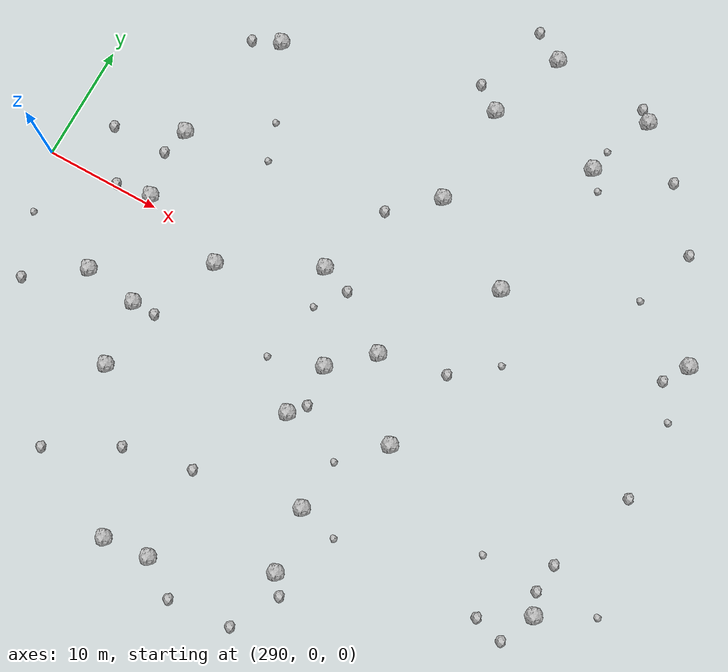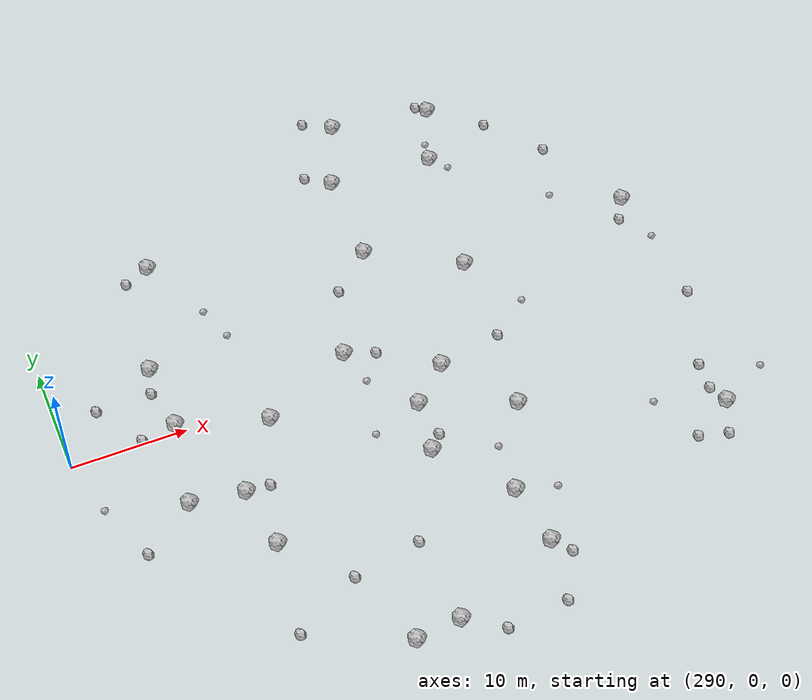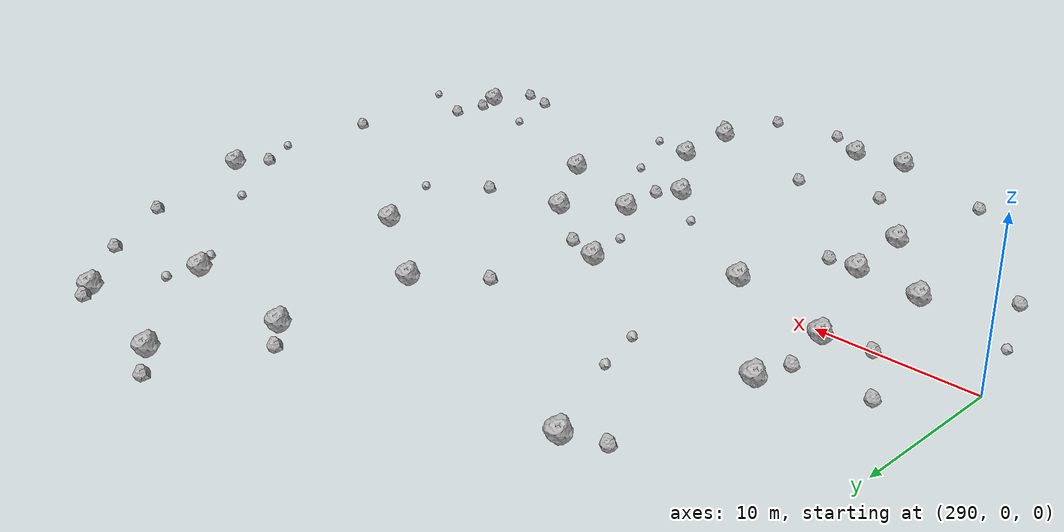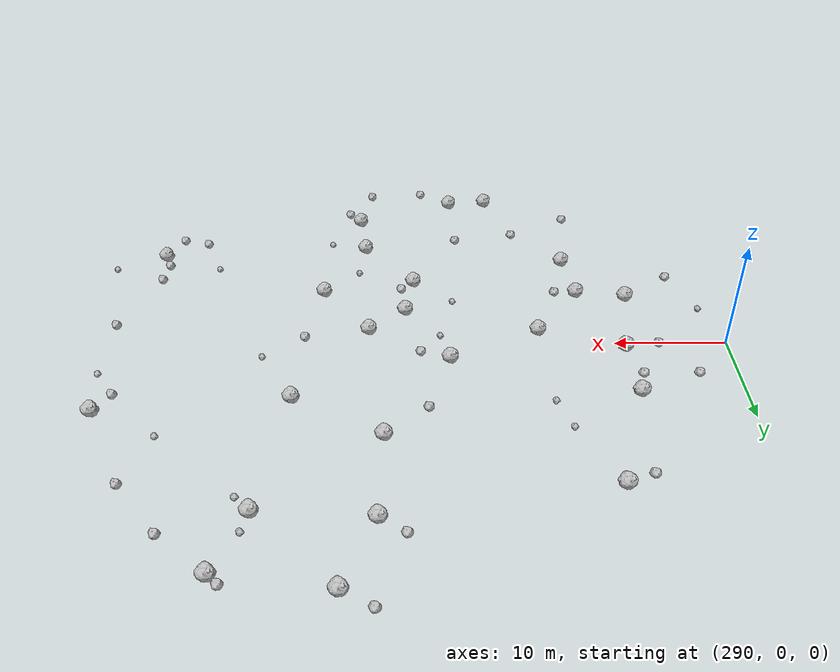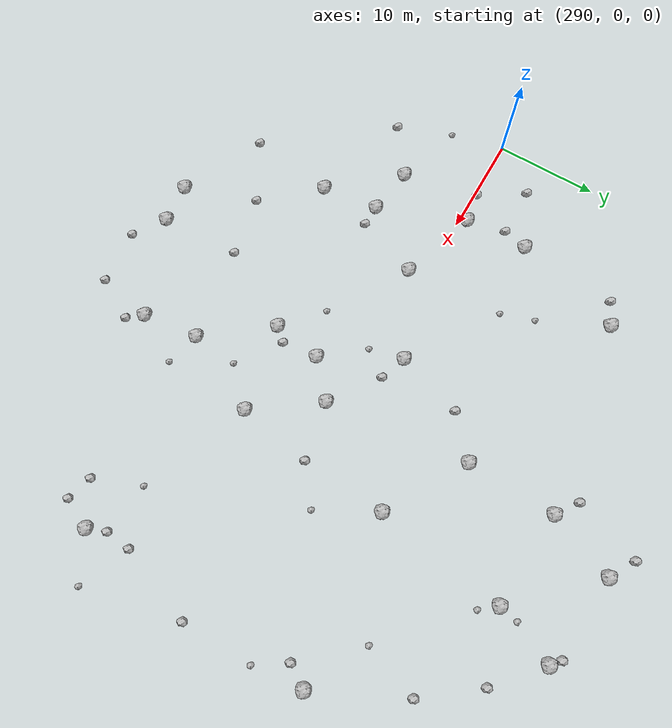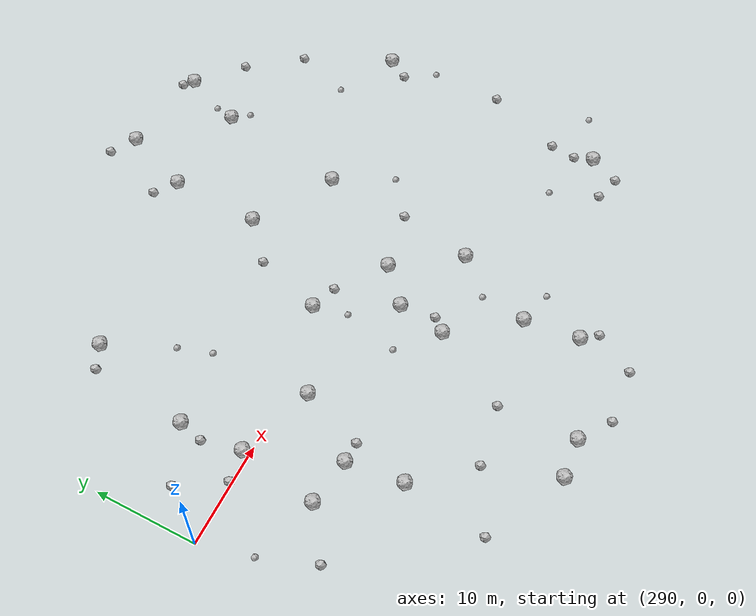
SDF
<sdf version="1.6">
 <world name="default">
  <include><uri>model://sun</uri></include>
  <model name="rock1_8_3">
   <include><uri>model://rock1</uri><pose>328.4871067689876 7.6188054392750075 0.5 0 0 0</pose></include>
  </model>
  <model name="rock1_8_4">
   <include><uri>model://rock1</uri><pose>318.08889443274626 -9.695860318273851 0.5 0 0 0</pose></include>
  </model>
  <model name="rock1_8_5">
   <include><uri>model://rock1</uri><pose>306.78851972078706 -1.7272441172160775 0.5 0 0 0</pose></include>
  </model>
  <model name="rock1_8_6">
   <include><uri>model://rock1</uri><pose>314.0619017668387 -25.042618786512648 0.5 0 0 0</pose></include>
  </model>
  <model name="rock1_8_7">
   <include><uri>model://rock1</uri><pose>297.92349765839253 -7.125509048318239 0.5 0 0 0</pose></include>
  </model>
  <model name="rock1_8_8">
   <include><uri>model://rock1</uri><pose>310.2056373277038 -25.42005140853241 0.5 0 0 0</pose></include>
  </model>
  <model name="rock1_8_9">
   <include><uri>model://rock1</uri><pose>314.930817251462 2.300016902083577 0.5 0 0 0</pose></include>
  </model>
  <model name="rock1_8_10">
   <include><uri>model://rock1</uri><pose>332.6826608421502 26.300017791742377 0.5 0 0 0</pose></include>
  </model>
  <model name="rock1_8_11">
   <include><uri>model://rock1</uri><pose>298.9782553749669 6.92496284615418 0.5 0 0 0</pose></include>
  </model>
  <model name="rock1_8_12">
   <include><uri>model://rock1</uri><pose>318.86717586982127 -4.950557028119164 0.5 0 0 0</pose></include>
  </model>
  <model name="rock1_8_13">
   <include><uri>model://rock1</uri><pose>320.6495998634826 12.210044708295904 0.5 0 0 0</pose></include>
  </model>
  <model name="rock1_8_14">
   <include><uri>model://rock1</uri><pose>344.85407006517863 9.280064910800697 0.5 0 0 0</pose></include>
  </model>
  <model name="rock1_8_15">
   <include><uri>model://rock1</uri><pose>299.2318410418554 0.7068256510401447 0.5 0 0 0</pose></include>
  </model>
  <model name="rock1_8_16">
   <include><uri>model://rock1</uri><pose>342.94160126093357 -14.422670941542489 0.5 0 0 0</pose></include>
  </model>
  <model name="rock1_8_17">
   <include><uri>model://rock1</uri><pose>330.4417613415085 20.43983052192074 0.5 0 0 0</pose></include>
  </model>
  <model name="rock1_8_18">
   <include><uri>model://rock1</uri><pose>322.86106098471646 -15.830009072284351 0.5 0 0 0</pose></include>
  </model>
  <model name="rock1_8_19">
   <include><uri>model://rock1</uri><pose>326.6207708174596 -8.023576808859744 0.5 0 0 0</pose></include>
  </model>
  <model name="rock1_8_20">
   <include><uri>model://rock1</uri><pose>302.53935432945985 -7.8023296488138385 0.5 0 0 0</pose></include>
  </model>
  <model name="rock1_8_21">
   <include><uri>model://rock1</uri><pose>323.5203228641291 27.580384456761337 0.5 0 0 0</pose></include>
  </model>
  <model name="rock1_8_22">
   <include><uri>model://rock1</uri><pose>303.2323383051364 -13.34788140376245 0.5 0 0 0</pose></include>
  </model>
  <model name="rock1_8_23">
   <include><uri>model://rock1</uri><pose>323.51252378163565 -21.254746780569924 0.5 0 0 0</pose></include>
  </model>
  <model name="rock1_8_24">
   <include><uri>model://rock1</uri><pose>322.20796363431174 -1.9160785067679633 0.5 0 0 0</pose></include>
  </model>
  <model name="rock1_8_25">
   <include><uri>model://rock1</uri><pose>302.174470961209 17.70827192223846 0.5 0 0 0</pose></include>
  </model>
  <model name="rock1_8_26">
   <include><uri>model://rock1</uri><pose>320.9621436736707 21.020852549885248 0.5 0 0 0</pose></include>
  </model>
  <model name="rock2_8_0">
   <include><uri>model://rock2</uri><pose>321.0068860443615 29.09579277245065 0.3 0 0 0</pose></include>
  </model>
  <model name="rock2_8_1">
   <include><uri>model://rock2</uri><pose>293.47833416751314 4.480110807894583 0.3 0 0 0</pose></include>
  </model>
  <model name="rock2_8_2">
   <include><uri>model://rock2</uri><pose>339.053251049517 -16.696594385385346 0.3 0 0 0</pose></include>
  </model>
  <model name="rock2_8_3">
   <include><uri>model://rock2</uri><pose>343.527700833643 7.215767949372818 0.3 0 0 0</pose></include>
  </model>
  <model name="rock2_8_4">
   <include><uri>model://rock2</uri><pose>307.77076821722324 -18.474831372760207 0.3 0 0 0</pose></include>
  </model>
  <model name="rock2_8_5">
   <include><uri>model://rock2</uri><pose>317.07533442383897 -27.116264370883556 0.3 0 0 0</pose></include>
  </model>
  <model name="rock2_8_6">
   <include><uri>model://rock2</uri><pose>341.56217283902845 -17.386034168014973 0.3 0 0 0</pose></include>
  </model>
  <model name="rock2_8_7">
   <include><uri>model://rock2</uri><pose>293.3656793700612 -10.38762405120783 0.3 0 0 0</pose></include>
  </model>
  <model name="rock2_8_8">
   <include><uri>model://rock2</uri><pose>340.7758233344228 17.67247397927595 0.3 0 0 0</pose></include>
  </model>
  <model name="rock2_8_9">
   <include><uri>model://rock2</uri><pose>313.6769831532339 -17.37314312234904 0.3 0 0 0</pose></include>
  </model>
  <model name="rock2_8_10">
   <include><uri>model://rock2</uri><pose>302.04520849347534 -21.61732234526308 0.3 0 0 0</pose></include>
  </model>
  <model name="rock2_8_11">
   <include><uri>model://rock2</uri><pose>319.2143583968226 -8.404559476777894 0.3 0 0 0</pose></include>
  </model>
  <model name="rock2_8_12">
   <include><uri>model://rock2</uri><pose>342.26372755485147 -12.638558095324314 0.3 0 0 0</pose></include>
  </model>
  <model name="rock2_8_13">
   <include><uri>model://rock2</uri><pose>317.4934386338016 1.4280805930634592 0.3 0 0 0</pose></include>
  </model>
  <model name="rock2_8_14">
   <include><uri>model://rock2</uri><pose>327.92310984927514 -0.7422032444415407 0.3 0 0 0</pose></include>
  </model>
  <model name="rock2_8_15">
   <include><uri>model://rock2</uri><pose>331.75595558988584 27.16396720386529 0.3 0 0 0</pose></include>
  </model>
  <model name="rock2_8_16">
   <include><uri>model://rock2</uri><pose>342.54273224818235 -10.127017551623418 0.3 0 0 0</pose></include>
  </model>
  <model name="rock2_8_17">
   <include><uri>model://rock2</uri><pose>318.8063488172257 22.575046525865083 0.3 0 0 0</pose></include>
  </model>
  <model name="rock2_8_18">
   <include><uri>model://rock2</uri><pose>336.9038255842498 22.637760235033127 0.3 0 0 0</pose></include>
  </model>
  <model name="rock2_8_19">
   <include><uri>model://rock2</uri><pose>299.83348927076497 16.69394344359533 0.3 0 0 0</pose></include>
  </model>
  <model name="rock2_8_20">
   <include><uri>model://rock2</uri><pose>324.65433047214776 -22.725614349856908 0.3 0 0 0</pose></include>
  </model>
  <model name="rock2_8_21">
   <include><uri>model://rock2</uri><pose>316.93006211285183 8.896893546262739 0.3 0 0 0</pose></include>
  </model>
  <model name="rock2_8_22">
   <include><uri>model://rock2</uri><pose>304.54566774898615 -7.846674441810475 0.3 0 0 0</pose></include>
  </model>
  <model name="rock2_8_23">
   <include><uri>model://rock2</uri><pose>322.40403390981277 -26.636782657921337 0.3 0 0 0</pose></include>
  </model>
  <model name="rock2_8_24">
   <include><uri>model://rock2</uri><pose>296.17583956965757 0.2614246121230721 0.3 0 0 0</pose></include>
  </model>
  <model name="rock2_8_25">
   <include><uri>model://rock2</uri><pose>345.3605481496486 -2.621808319430599 0.3 0 0 0</pose></include>
  </model>
  <model name="rock2_8_26">
   <include><uri>model://rock2</uri><pose>298.3121102340866 4.532549955628227 0.3 0 0 0</pose></include>
  </model>
  <model name="rock3_8_0">
   <include><uri>model://rock3</uri><pose>347.40187957146355 -12.154270025541479 0.2 0 0 0</pose></include>
  </model>
  <model name="rock3_8_1">
   <include><uri>model://rock3</uri><pose>315.66486716232873 -1.054948946705565 0.2 0 0 0</pose></include>
  </model>
  <model name="rock3_8_2">
   <include><uri>model://rock3</uri><pose>291.33408474104596 -5.163686574301941 0.2 0 0 0</pose></include>
  </model>
  <model name="rock3_8_3">
   <include><uri>model://rock3</uri><pose>330.8079960635555 22.386108300095152 0.2 0 0 0</pose></include>
  </model>
  <model name="rock3_8_4">
   <include><uri>model://rock3</uri><pose>331.6596087838152 18.935411732585216 0.2 0 0 0</pose></include>
  </model>
  <model name="rock3_8_5">
   <include><uri>model://rock3</uri><pose>337.2141555282708 -12.169881466667448 0.2 0 0 0</pose></include>
  </model>
  <model name="rock3_8_6">
   <include><uri>model://rock3</uri><pose>314.3665231950562 -6.463512711654573 0.2 0 0 0</pose></include>
  </model>
  <model name="rock3_8_7">
   <include><uri>model://rock3</uri><pose>305.18950860540986 11.264029352667109 0.2 0 0 0</pose></include>
  </model>
  <model name="rock3_8_8">
   <include><uri>model://rock3</uri><pose>331.47925518434425 2.0209195276263117 0.2 0 0 0</pose></include>
  </model>
  <model name="rock3_8_9">
   <include><uri>model://rock3</uri><pose>326.21105975412945 -16.73819420093833 0.2 0 0 0</pose></include>
  </model>
  <model name="rock3_8_10">
   <include><uri>model://rock3</uri><pose>306.2616611585261 8.027668568434116 0.2 0 0 0</pose></include>
  </model>
  <model name="rock3_8_11">
   <include><uri>model://rock3</uri><pose>323.30097640896156 -11.395596770202797 0.2 0 0 0</pose></include>
  </model>
  <model name="rock3_8_12">
   <include><uri>model://rock3</uri><pose>338.9495754729064 12.27483931657536 0.2 0 0 0</pose></include>
  </model>
  <model name="rock3_8_13">
   <include><uri>model://rock3</uri><pose>345.40218368186237 4.344869138321563 0.2 0 0 0</pose></include>
  </model>
 </world>
</sdf>
